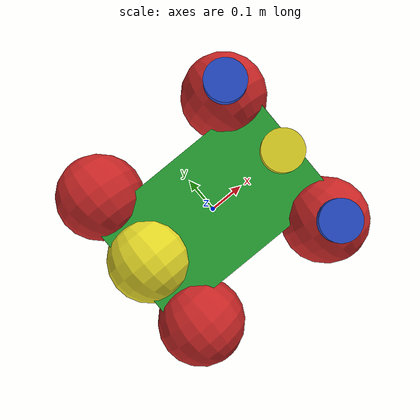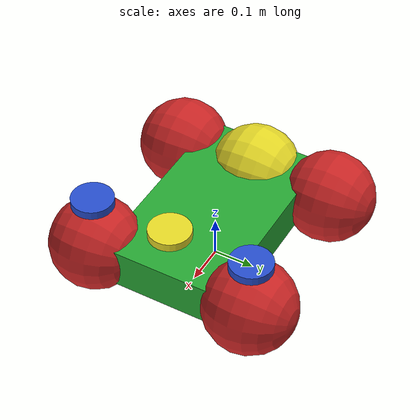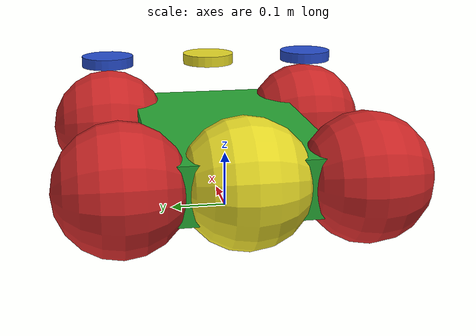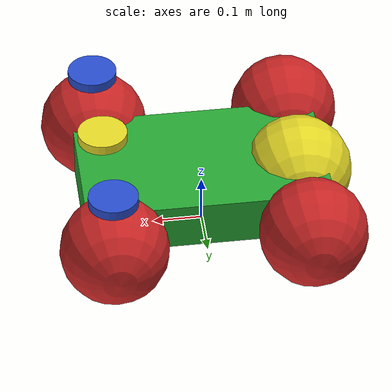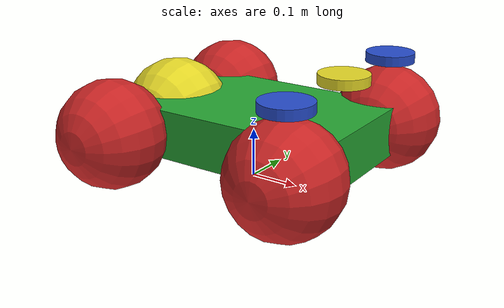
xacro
<?xml version="1.0"?>
<robot name="robot" xmlns:xacro="http://www.ros.org/wiki/xacro">
<!--
Robot model taken from http://wiki.ros.org/pr2_mechanism/Tutorials/SImple%20URDF-Controller%20Example
-->
  <xacro:include filename="$(find steer_drive_controller)/test/common/urdf/wheel_sphere.xacro"/>

  <xacro:property name="deg_to_rad" value="0.01745329251994329577"/>

  <!-- Constants for robot dimensions -->
  <xacro:property name="length" value="0.5" />
  <xacro:property name="width" value="0.3" />
  <xacro:property name="wheel_radius" value="0.11" /> <!-- Link 1 -->
  <xacro:property name="thickness" value="0.086" /> <!-- Link 2 -->
  <xacro:property name="axel_offset" value="0.05" /> <!-- Space btw top of beam and the each joint -->
  <xacro:property name="steer_offset" value="0.02" /> <!-- Link 1 -->

  <!-- Links: inertial,visual,collision -->
  <link name="base_link">
    <inertial>
      <!-- origin is relative -->
      <origin xyz="0 0 0" rpy="0 0 0"/>
      <mass value="5"/>
      <inertia ixx="5" ixy="0" ixz="0" iyy="5" iyz="0" izz="5"/>
    </inertial>
    <visual>
      <geometry>
        <box size="${length} ${width} 0.1"/>
      </geometry>
    </visual>
    <collision>
      <!-- origin is relative -->
      <origin xyz="0 0 0"/>
      <geometry>
        <box size="${length} ${width} 0.1"/>
      </geometry>
    </collision>
  </link>

  <link name="base_footprint">
    <visual>
      <geometry>
        <sphere radius="0.01"/>
      </geometry>
    </visual>
    <collision>
      <origin xyz="0 0 0"/>
      <geometry>
        <sphere radius="0.00000001"/>
      </geometry>
    </collision>
  </link>
  <joint name="base_footprint_joint" type="fixed">
    <origin xyz="0 0 ${wheel_radius}" rpy="0 0 0"/>
    <child link="base_link"/>
    <parent link="base_footprint"/>
  </joint>

  <!-- joints for steer_drive_controller -->
  <front_steer name="front" parent="base" radius="${wheel_radius}" thickness="${thickness}"
      length="${length}" width="${width}" axel_offset="${axel_offset}" steer_height="${wheel_radius+steer_offset}">
    <origin xyz="${length/2-axel_offset} 0 0" rpy="${-90 * deg_to_rad} 0 0"/>
  </front_steer>
  <rear_wheel name="rear" parent="base" radius="${wheel_radius}" thickness="${thickness}">
    <origin xyz="${-length/2+axel_offset} 0 0" rpy="${-90 * deg_to_rad} 0 0"/>
  </rear_wheel>

  <!-- Wheels -->
  <front_wheel_lr name="front_right" parent="base" radius="${wheel_radius}" thickness="${thickness}"
      length="${length}" width="${width}" axel_offset="${axel_offset}" right_left="1" steer_height="${wheel_radius+steer_offset}">
    <origin xyz="${length/2-axel_offset} ${width/2+axel_offset} 0" rpy="${-90 * deg_to_rad} 0 0"/>
  </front_wheel_lr>
  <front_wheel_lr name="front_left" parent="base" radius="${wheel_radius}" thickness="${thickness}"
      length="${length}" width="${width}" axel_offset="${axel_offset}" right_left="-1" steer_height="${wheel_radius+steer_offset}">
    <origin xyz="${length/2-axel_offset} ${-width/2-axel_offset} 0" rpy="${-90 * deg_to_rad} 0 0"/>
  </front_wheel_lr>
  <rear_wheel_lr name="rear_right" parent="base" radius="${wheel_radius}" thickness="${thickness}">
    <origin xyz="${-length/2+axel_offset} ${width/2+axel_offset} 0" rpy="${-90 * deg_to_rad} 0 0"/>
  </rear_wheel_lr>
  <rear_wheel_lr name="rear_left" parent="base" radius="${wheel_radius}" thickness="${thickness}">
    <origin xyz="${-length/2+axel_offset} ${-width/2-axel_offset} 0" rpy="${-90 * deg_to_rad} 0 0"/>
  </rear_wheel_lr>

  <!-- Colour -->
  <gazebo reference="base_link">
    <material>Gazebo/Green</material>
  </gazebo>

  <gazebo reference="base_footprint">
    <material>Gazebo/Purple</material>
  </gazebo>

</robot>

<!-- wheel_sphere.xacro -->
<robot xmlns:xacro="http://www.ros.org/wiki/xacro">
  <xacro:property name="steer_radius" value="0.05" /> <!-- Link 1 -->
  <xacro:property name="steer_thickness" value="0.02" /> <!-- Link 1 -->
  <xacro:property name="steer_effort"   value="10.0"/>
  <xacro:property name="steer_velocity" value="5.0"/>

  <macro name="front_steer" params="name parent radius thickness length width axel_offset steer_height *origin">
    <link name="${name}_steer_link">
      <inertial>
        <origin xyz="0 0 0" rpy="0 0 0"/>
        <mass value="1"/>
        <inertia ixx="0.2" ixy="0" ixz="0" iyy="0.2" iyz="0" izz="0.2"/>
      </inertial>
      <visual>
        <origin xyz="0 0 0" rpy="0 0 0"/>
        <geometry>
          <cylinder radius="${steer_radius}" length="${steer_thickness}"/>
        </geometry>
      </visual>
      <collision>
        <origin xyz="0 0 0" rpy="0 0 0"/>
        <geometry>
          <cylinder radius="${steer_radius}" length="${steer_thickness}"/>
        </geometry>
      </collision>
    </link>

    <joint name="${name}_steer_joint" type="revolute">
      <parent link="${parent}_link"/>
      <child link="${name}_steer_link"/>
      <origin xyz="${length/2-axel_offset} 0 ${steer_height}" rpy="0 0 0"/>
      <axis xyz="0 0 1"/>
      <limit effort="${steer_effort}"
             lower="${-180.0 * deg_to_rad}" upper="${180.0 * deg_to_rad}"
             velocity="${steer_velocity}"/>
     </joint>

    <gazebo reference="${name}_steer_link">
      <material>Gazebo/Yellow</material>
    </gazebo>
  </macro>

  <macro name="front_wheel_lr" params="name parent radius thickness length width axel_offset right_left steer_height *origin">
    <link name="${name}_steer_link">
      <inertial>
        <origin xyz="0 0 0" rpy="0 0 0"/>
        <mass value="1"/>
        <inertia ixx="0.2" ixy="0" ixz="0" iyy="0.2" iyz="0" izz="0.2"/>
      </inertial>
      <visual>
        <origin xyz="0 0 0" rpy="0 0 0"/>
        <geometry>
          <cylinder radius="${steer_radius}" length="${steer_thickness}"/>
        </geometry>
      </visual>
      <collision>
        <origin xyz="0 0 0" rpy="0 0 0"/>
        <geometry>
          <cylinder radius="${steer_radius}" length="${steer_thickness}"/>
        </geometry>
      </collision>
    </link>

    <joint name="${name}_steer_joint" type="revolute">
      <parent link="${parent}_link"/>
      <child link="${name}_steer_link"/>
      <origin xyz="${length/2-axel_offset} ${right_left*(width/2+axel_offset)} ${steer_height}" rpy="0 0 0"/>
      <!--insert_block name="origin"/-->
      <axis xyz="0 0 1"/>
      <limit effort="${steer_effort}"
             lower="${-180.0 * deg_to_rad}" upper="${180.0 * deg_to_rad}"
             velocity="${steer_velocity}"/>
     </joint>

    <link name="${name}_wheel_link">
      <inertial>
        <origin xyz="0 0 0" rpy="0 0 0"/>
        <mass value="1"/>
        <inertia ixx="0.2" ixy="0" ixz="0" iyy="0.2" iyz="0" izz="0.2"/>
      </inertial>
      <visual>
        <origin xyz="0 0 0" rpy="0 0 0"/>
        <geometry>
          <sphere radius="${wheel_radius}"/>
        </geometry>
      </visual>
      <collision>
        <origin xyz="0 0 0" rpy="0 0 0"/>
        <geometry>
          <sphere radius="${wheel_radius}"/>
        </geometry>
      </collision>
    </link>

    <joint name="${name}_wheel_joint" type="continuous">
      <parent link="${name}_steer_link"/>
      <child link="${name}_wheel_link"/>
      <origin xyz="0 0 ${-steer_height}" rpy="${-90 * deg_to_rad} 0 0"/>
      <axis xyz="0 0 1"/>
    </joint>

    <!-- Transmission is important to link the joints and the controller -->
    <transmission name="${name}_steer_joint_trans" type="SimpleTransmission">
      <actuator name="${name}_steer_joint_motor"/>
      <joint name="${name}_steer_joint"/>
      <mechanicalReduction>1</mechanicalReduction>
      <motorTorqueConstant>1</motorTorqueConstant>
    </transmission>
    <transmission name="${name}_wheel_joint_trans" type="SimpleTransmission">
      <actuator name="${name}_wheel_joint_motor"/>
      <joint name="${name}_wheel_joint"/>
      <mechanicalReduction>1</mechanicalReduction>
      <motorTorqueConstant>1</motorTorqueConstant>
    </transmission>

    <gazebo reference="${name}_steer_link">
      <material>Gazebo/Blue</material>
    </gazebo>
    <gazebo reference="${name}_wheel_link">
      <material>Gazebo/Red</material>
    </gazebo>
  </macro>

  <macro name="rear_wheel" params="name parent radius thickness *origin">
    <link name="${name}_wheel_link">
      <inertial>
        <origin xyz="0 0 0" rpy="0 0 0"/>
        <mass value="1"/>
        <inertia ixx="0.2" ixy="0" ixz="0" iyy="0.2" iyz="0" izz="0.2"/>
      </inertial>
      <visual>
        <origin xyz="0 0 0" rpy="0 0 0"/>
        <geometry>
          <sphere radius="${wheel_radius}"/>
        </geometry>
      </visual>
      <collision>
        <origin xyz="0 0 0" rpy="0 0 0"/>
        <geometry>
          <sphere radius="${wheel_radius}"/>
        </geometry>
      </collision>
    </link>

    <joint name="${name}_wheel_joint" type="continuous">
      <parent link="${parent}_link"/>
      <child link="${name}_wheel_link"/>
      <insert_block name="origin"/>
      <axis xyz="0 0 1"/>
    </joint>

    <!-- Transmission is important to link the joints and the controller -->
    <transmission name="${name}_wheel_joint_trans" type="SimpleTransmission">
      <actuator name="${name}_wheel_joint_motor"/>
      <joint name="${name}_wheel_joint"/>
      <mechanicalReduction>1</mechanicalReduction>
      <motorTorqueConstant>1</motorTorqueConstant>
    </transmission>

    <gazebo reference="${name}_wheel_link">
      <material>Gazebo/Yellow</material>
    </gazebo>
  </macro>

  <macro name="rear_wheel_lr" params="name parent radius thickness *origin">
    <link name="${name}_wheel_link">
      <inertial>
        <origin xyz="0 0 0" rpy="0 0 0"/>
        <mass value="1"/>
        <inertia ixx="0.2" ixy="0" ixz="0" iyy="0.2" iyz="0" izz="0.2"/>
      </inertial>
      <visual>
        <origin xyz="0 0 0" rpy="0 0 0"/>
        <geometry>
          <sphere radius="${wheel_radius}"/>
        </geometry>
      </visual>
      <collision>
        <origin xyz="0 0 0" rpy="0 0 0"/>
        <geometry>
          <sphere radius="${wheel_radius}"/>
        </geometry>
      </collision>
    </link>

    <joint name="${name}_wheel_joint" type="continuous">
      <parent link="${parent}_link"/>
      <child link="${name}_wheel_link"/>
      <insert_block name="origin"/>
      <axis xyz="0 0 1"/>
    </joint>

    <!-- Transmission is important to link the joints and the controller -->
    <transmission name="${name}_wheel_joint_trans" type="SimpleTransmission">
      <actuator name="${name}_wheel_joint_motor"/>
      <joint name="${name}_wheel_joint"/>
      <mechanicalReduction>1</mechanicalReduction>
      <motorTorqueConstant>1</motorTorqueConstant>
    </transmission>

    <gazebo reference="${name}_wheel_link">
      <material>Gazebo/Red</material>
    </gazebo>
  </macro>
</robot>
